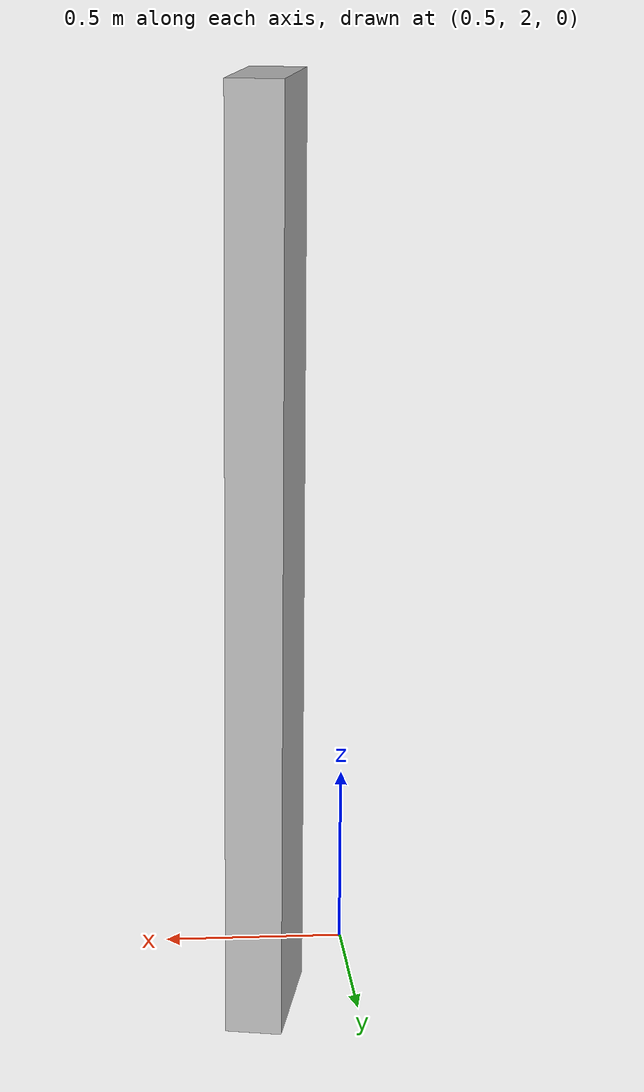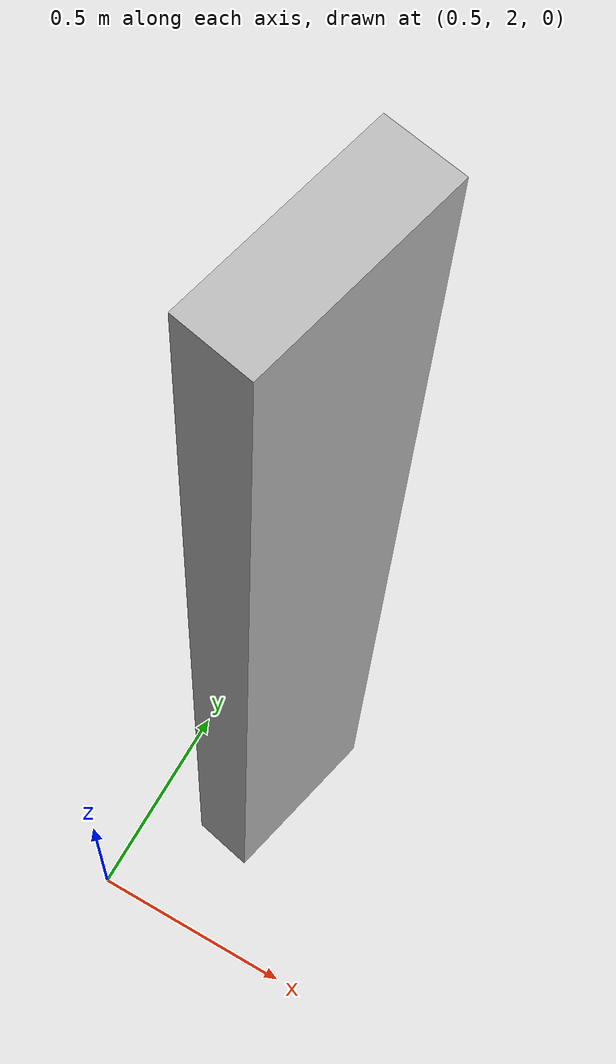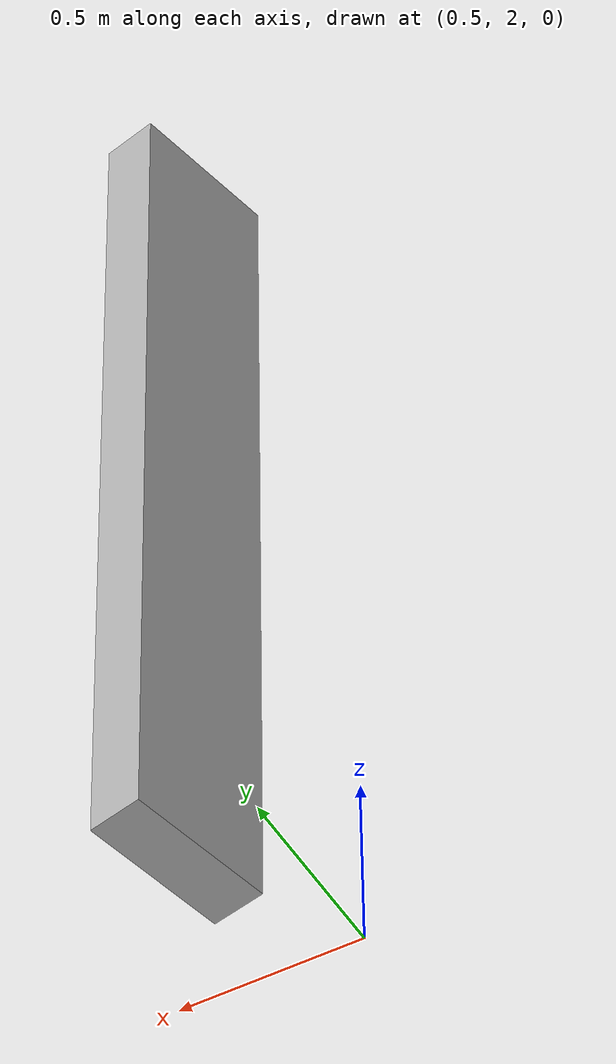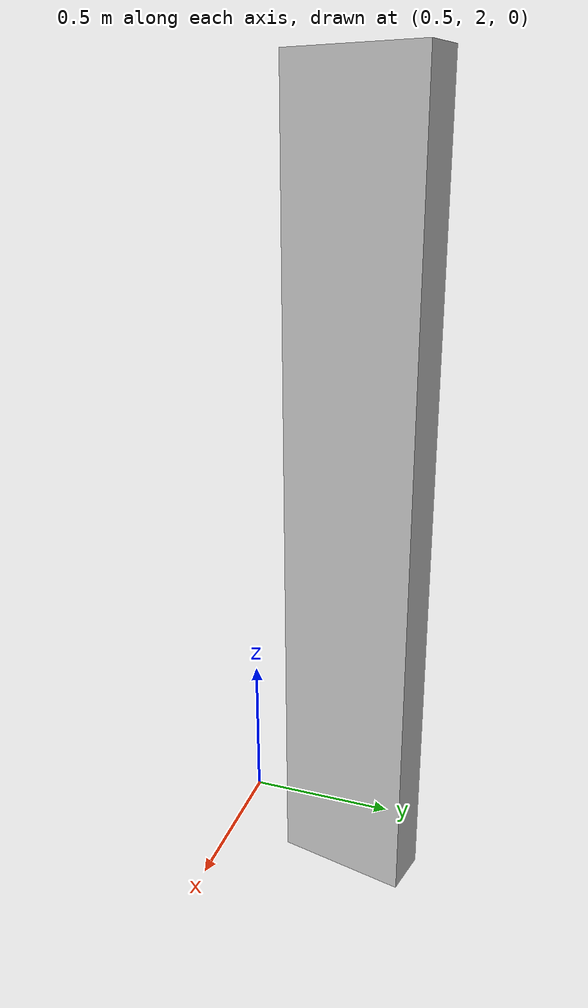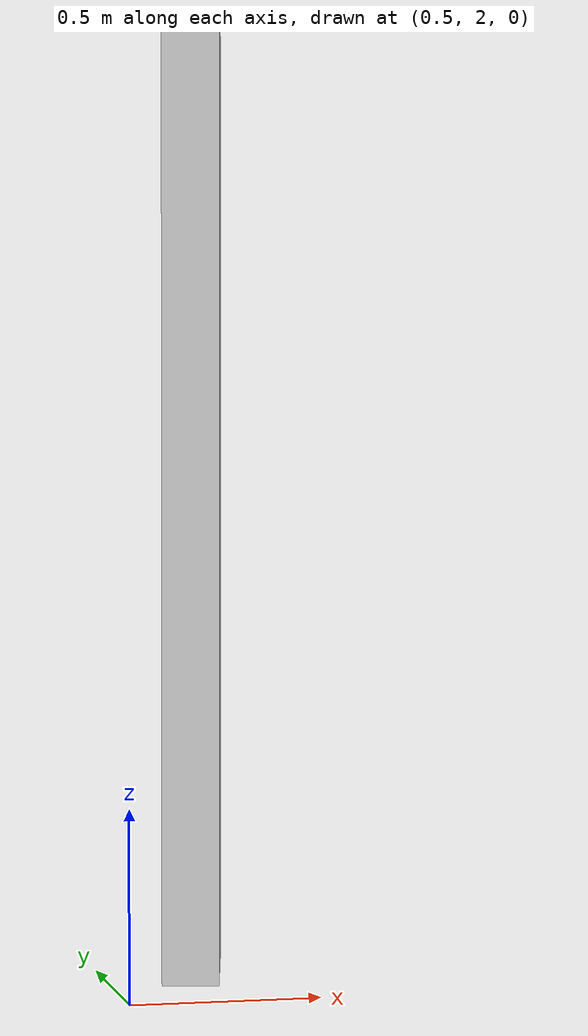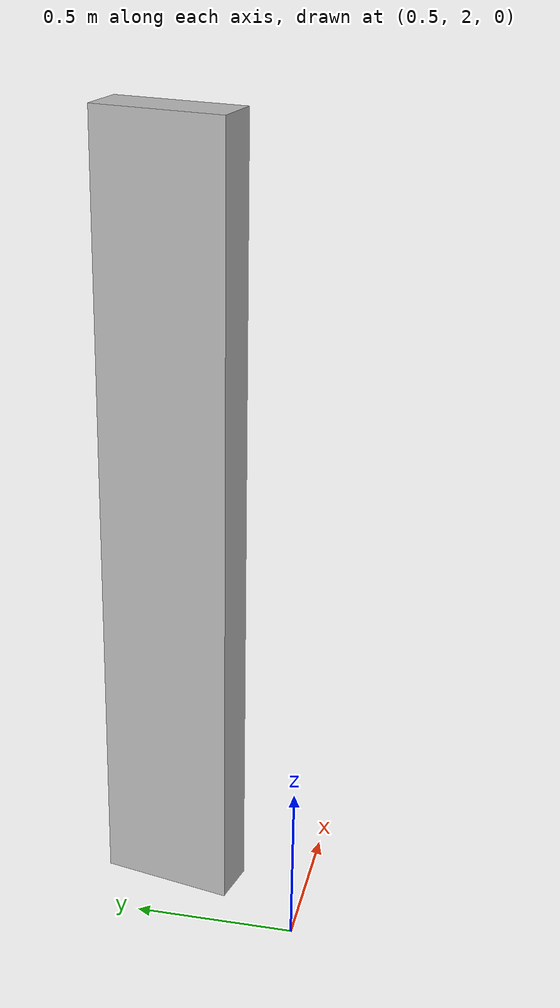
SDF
<?xml version="1.0" ?>
<sdf version="1.6">
  <model name="sps_2206">
    <pose frame="">0 0 0 0 -0 0</pose>
    <static>0</static>
    <self_collide>0</self_collide>
    <allow_auto_disable>0</allow_auto_disable>
    <link name="Wall5902">
      <kinematic>0</kinematic>
      <gravity>1</gravity>
      <self_collide>0</self_collide>
      <collision name="collision">
        <geometry>
          <box>
            <size>0.420246 0.15 2.5</size>
          </box>
        </geometry>
        <pose frame="">0 0 0 0 -0 0</pose>
      </collision>
      <visual name="visual">
        <geometry>
          <box>
            <size>0.420246 0.15 2.5</size>
          </box>
        </geometry>
        <pose frame="">0 0 0 0 -0 0</pose>
        <cast_shadows>1</cast_shadows>
        <transparency>0.0</transparency>
      </visual>
      <pose frame="">0.749046 2.437 1.25 0 0 -1.78565</pose>
    </link>
  </model>
</sdf>
